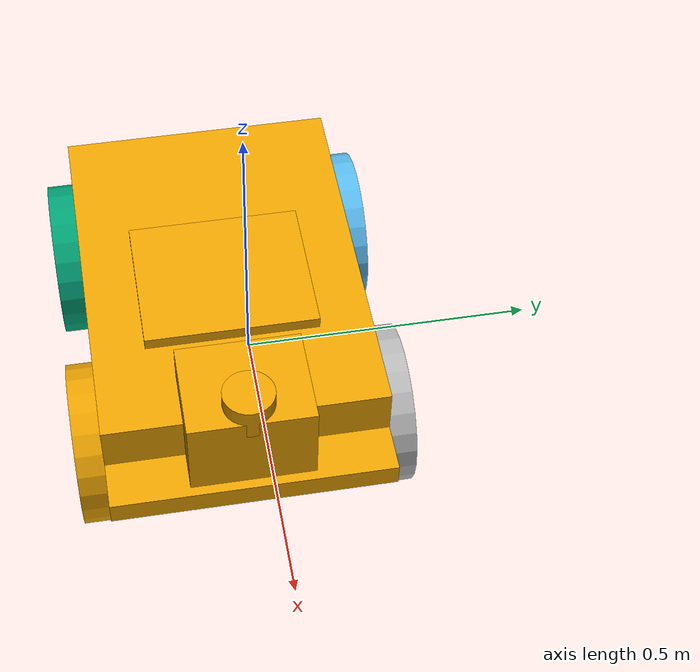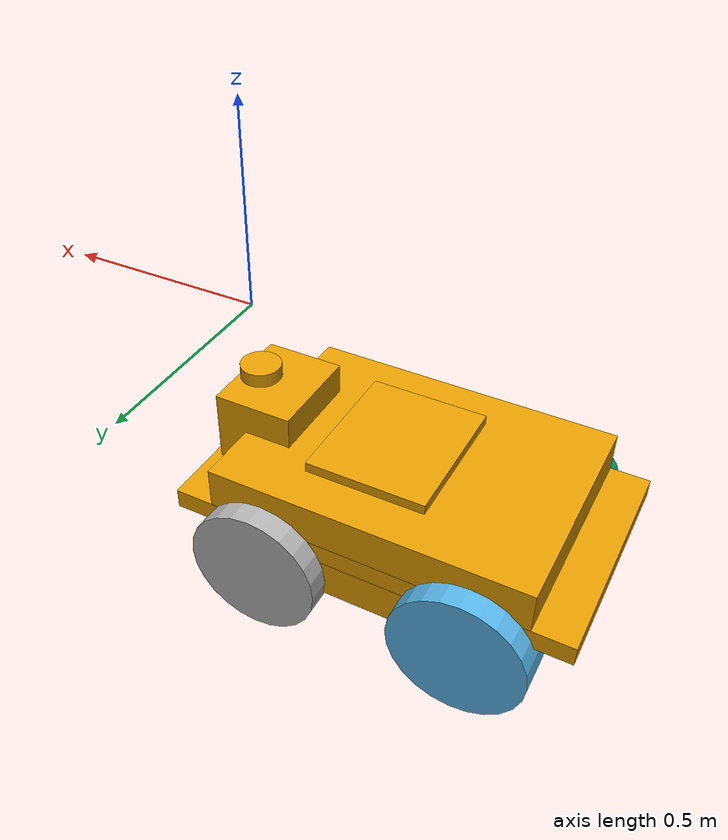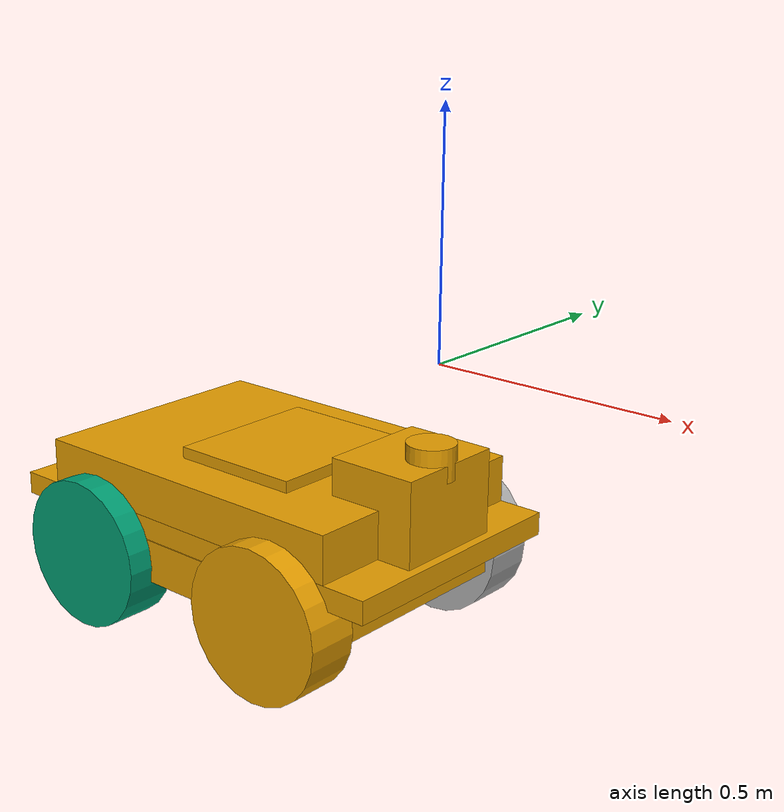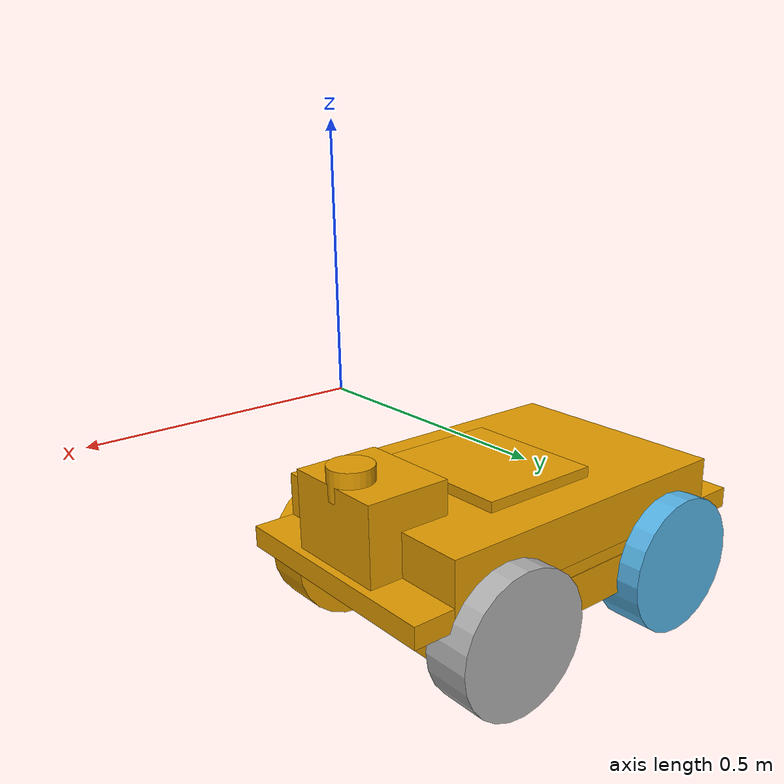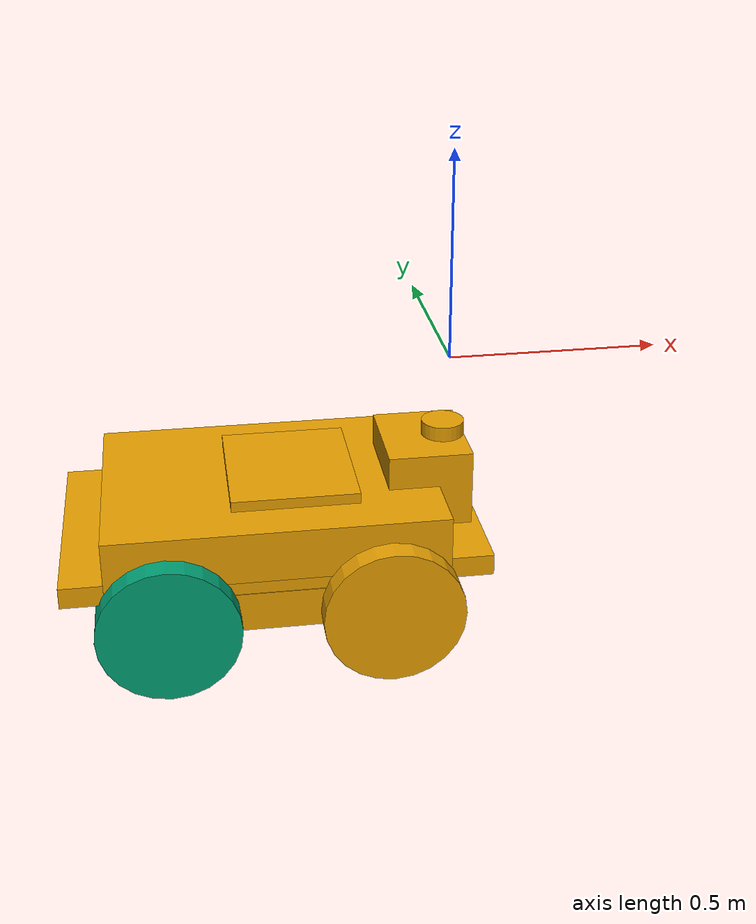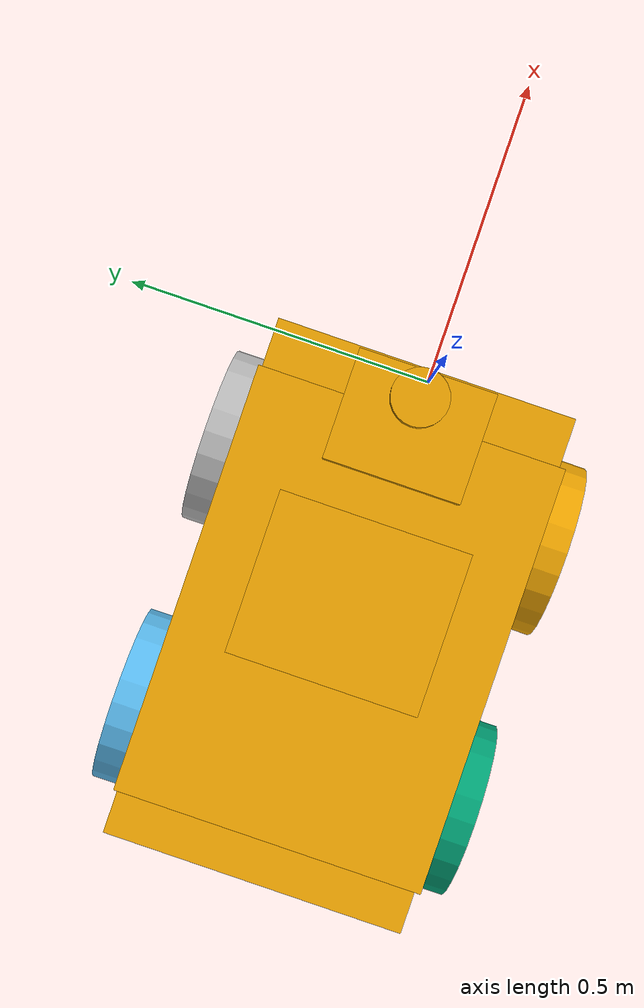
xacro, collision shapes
<?xml version="1.0"?>
<robot name="H03" xmlns:xacro="http://ros.org/wiki/xacro">
  <xacro:arg name="name" default="H03"/>
  <xacro:property name="robot_namespace" value="$(arg name)"/>
  <link name='base_link'>
    <collision name='base_link_collision'>
      <origin xyz='0 0 0.12' rpy='0 -0 0'/>
      <geometry>
        <box size='0.9874 0.5709 0.05'/>
      </geometry>
    </collision>
    <collision name='base_link_collision_bottom'>
      <origin xyz='0 0 0.046' rpy='0 -0 0'/>
      <geometry>
        <box size='0.8 0.5709 0.095'/>
      </geometry>
    </collision>
    <collision name='base_link_collision_1'>
      <origin xyz='0 0 0.185625' rpy='0 -0 0'/>
      <geometry>
        <box size='0.78992 0.5709 0.12375'/>
      </geometry>
    </collision>
    <collision name='base_link_fixed_joint_lump__velodyne_base_link_collision_6'>
      <origin xyz='0.424 0 0.327' rpy='0 -0 0'/>
      <geometry>
        <cylinder radius='0.0516' length='0.0717'/>
      </geometry>
    </collision>
    <collision name='base_link_fixed_joint_lump__sensor_tower_8'>
      <origin xyz='0.374 0 0.215' rpy='0 -0 0'/>
      <geometry>
        <box size='0.2 0.25 0.225'/>
      </geometry>
    </collision>
    <collision name='base_link_fixed_joint_lump__computer_block_9'>
      <origin xyz='0.05 0 0.185' rpy='0 -0 0'/>
      <geometry>
        <box size='0.3 0.355 0.175'/>
      </geometry>
    </collision>
    <visual name='base_link_visual'>
      <origin xyz='0 0 0' rpy='0 -0 0'/>
      <geometry>
        <mesh filename='package://marble_common/meshes/base_link.dae' scale='1 1 1'/>
      </geometry>
    </visual>
    <visual name='base_link_fixed_joint_lump__front_bumper_link_visual_3'>
      <origin xyz='0.48 0 0.091' rpy='0 -0 0'/>
      <geometry>
        <mesh filename='package://marble_common/meshes/bumper.dae' scale='1 1 1'/>
      </geometry>
    </visual>
    <visual name='base_link_fixed_joint_lump__rear_bumper_link_visual_4'>
      <origin xyz='-0.48 0 0.091' rpy='0 -0 3.14159'/>
      <geometry>
        <mesh filename='package://marble_common/meshes/bumper.dae' scale='1 1 1'/>
      </geometry>
    </visual>
    <visual name='base_link_fixed_joint_lump__top_chassis_link_visual_5'>
      <origin xyz='0 0 0' rpy='0 -0 0'/>
      <geometry>
        <mesh filename='package://marble_common/meshes/top_chassis.dae' scale='1 1 1'/>
      </geometry>
    </visual>
    <visual name='base_link_fixed_joint_lump__velodyne_base_link_visual_10'>
      <origin xyz='0.424 0 0.327' rpy='0 -0 0'/>
      <geometry>
        <mesh filename='package://marble_common/meshes/VLP16_base_1.dae' scale='1 1 1'/>
      </geometry>
    </visual>
    <visual name='base_link_fixed_joint_lump__velodyne_base_link_visual_11'>
      <origin xyz='0.424 0 0.327' rpy='0 -0 0'/>
      <geometry>
        <mesh filename='package://marble_common/meshes/VLP16_base_2.dae' scale='1 1 1'/>
      </geometry>
    </visual>
    <visual name='base_link_fixed_joint_lump__velodyne_visual_12'>
      <origin xyz='0.424 0 0.327' rpy='0 -0 0'/>
      <geometry>
        <mesh filename='package://marble_common/meshes/VLP16_scan.dae' scale='1 1 1'/>
      </geometry>
    </visual>
    <visual name='base_link_fixed_joint_lump__user_rail_link_visual_13'>
      <origin xyz='0.272 0 0.245' rpy='0 -0 0'/>
      <geometry>
        <mesh filename='package://marble_common/meshes/user_rail.dae' scale='1 1 1'/>
      </geometry>
    </visual>
    <visual name='base_link_fixed_joint_lump__planar_lidar_link_visual_14'>
      <origin xyz='0.474 0 0.127' rpy='0 -0 0'/>
      <geometry>
        <cylinder radius='0.045' length='0.05'/>
      </geometry>
    </visual>
    <visual name='base_link_fixed_joint_lump__sensor_tower_16'>
      <origin xyz='0.374 0 0.215' rpy='0 -0 0'/>
      <geometry>
        <box size='0.2 0.25 0.225'/>
      </geometry>
    </visual>
    <visual name='base_link_fixed_joint_lump__computer_block_17'>
      <origin xyz='0.05 0 0.185' rpy='0 -0 0'/>
      <geometry>
        <box size='0.3 0.355 0.175'/>
      </geometry>
    </visual>
  </link>

  <link name="${robot_namespace}/imu_viz_link"/>
  <joint name="imu-viz-joint" type="fixed">
    <parent link="${robot_namespace}/imu_viz_link"/>
    <child link="${robot_namespace}/imu_link"/>
    <origin xyz="0 0 0" rpy="3.1415926535 0.0 -1.57079632679"/> <!-- precision machined plate, ouster out back, no heat sink -->
  </joint>

  <link name="${robot_namespace}/imu_link"/>
  <joint name="imu-joint" type="fixed">
    <parent link="${robot_namespace}/imu_viz_link"/>
    <child link="base_link"/>
    <origin xyz="-0.4379 0 -.52418" rpy="0.0 0.0 0.0" />
  </joint>

  <link name="${robot_namespace}/planning_link"/>
  <joint name="planning-joint" type="fixed">
    <parent link="base_link"/>
    <child link="${robot_namespace}/planning_link"/>
    <origin xyz="0.0 0.0 0.62" rpy="0.0 0.0 0.0" />
  </joint>

  <link name="${robot_namespace}/horiz_ouster_sensor"/>
  <joint name="horiz-ouster-joint" type="fixed">
    <parent link="${robot_namespace}/imu_viz_link"/>
    <child link="${robot_namespace}/horiz_ouster_sensor"/>
    <origin xyz="-0.07516 -0.0033 0.0315" rpy="0 0 0"/> <!-- precision machined plate, ouster out back, no heat sink --> <!-- z = 0.02268 for old firmware -->
  </joint>

  <link name="${robot_namespace}/vert_ouster_sensor"/>
  <joint name="vert-ouster-joint" type="fixed">
    <parent link="${robot_namespace}/imu_viz_link"/>
    <child link="${robot_namespace}/vert_ouster_sensor"/>
    <origin xyz="-0.192 0.0037 -0.1365" rpy="1.57079632679 0.0 -1.57079632679" />
  </joint>

  <link name="${robot_namespace}/cam_front_link"/>
  <joint name="cam-front-joint" type="fixed">
    <parent link="${robot_namespace}/imu_viz_link"/>
    <child link="${robot_namespace}/cam_front_link"/>
    <origin xyz="0.152758 0.00 0.0324" rpy="0 0 0" />
  </joint>

  <link name="${robot_namespace}/cam_left_link"/>
  <joint name="cam-left-joint" type="fixed">
    <parent link="${robot_namespace}/imu_viz_link"/>
    <child link="${robot_namespace}/cam_left_link"/>
    <origin xyz="0.00 0.158248 0.0324" rpy="0 0 1.5708" />
  </joint>

  <link name="${robot_namespace}/cam_right_link"/>
  <joint name="cam-right-joint" type="fixed">
    <parent link="${robot_namespace}/imu_viz_link"/>
    <child link="${robot_namespace}/cam_right_link"/>
    <origin xyz="0.00 -0.158258 0.0324" rpy="0 0 -1.5708" />
  </joint>

  <link name="${robot_namespace}/cam_back_link"/>
  <joint name="cam-back-joint" type="fixed">
    <parent link="${robot_namespace}/imu_viz_link"/>
    <child link="${robot_namespace}/cam_back_link"/>
    <origin xyz="-0.1294205 0.00 0.0289" rpy="0 0 -3.14159" />
  </joint>

  <link name="${robot_namespace}/picoflexx_mount_link"/>
  <joint name='picoflexx_mount_joint' type='fixed'>
    <origin xyz='0.02 0.0 -0.075' rpy='0 0.5236 0'/>
    <parent link='${robot_namespace}/imu_viz_link'/>
    <child link='${robot_namespace}/picoflexx_mount_link'/>
  </joint>

  <link name="${robot_namespace}/pico_flexx_left_optical_frame"/>
  <joint name='picoflexx_left_joint' type='fixed'>
    <origin xyz='0.0 0.0 0.0' rpy='0.0 1.5707 0.41'/>
    <parent link='${robot_namespace}/picoflexx_mount_link'/>
    <child link='${robot_namespace}/pico_flexx_left_optical_frame'/>
  </joint>

  <link name="${robot_namespace}/pico_flexx_right_optical_frame"/>
  <joint name='picoflexx_right_joint' type='fixed'>
    <origin xyz='0.0 0.0 0.0' rpy='0.0 1.5707 -0.41'/>
    <parent link='${robot_namespace}/picoflexx_mount_link'/>
    <child link='${robot_namespace}/pico_flexx_right_optical_frame'/>
  </joint>

  <link name="laser"/>
  <joint name="rplidar-joint" type="fixed">
    <parent link="base_link"/>
    <child link="laser"/>
    <origin xyz="0.48 0 0.0" rpy="0.0 0.0 3.1415" />
  </joint>

  <link name="${robot_namespace}/rplidar_safety_link"/>
  <joint name="base-link-rplidar-joint" type="fixed">
    <parent link="base_link"/>
    <child link="${robot_namespace}/rplidar_safety_link"/>
    <origin xyz="0.48 0 0.0" rpy="0.0 3.1415 1.5707" />
  </joint>

  <link name='${robot_namespace}/front_left_wheel_link'>
    <inertial>
      <origin xyz='0 0 0' rpy='0 -0 0'/>
      <mass value='2.637'/>
      <inertia ixx='0.02467' ixy='0' ixz='0' iyy='0.04411' iyz='0' izz='0.02467'/>
    </inertial>
    <collision name='front_left_wheel_link_collision'>
      <origin xyz='0 0 0' rpy='1.5708 -0 0'/>
      <geometry>
        <cylinder radius='0.1651' length='0.1143'/>
      </geometry>
    </collision>
    <visual name='front_left_wheel_link_visual'>
      <origin xyz='0 0 0' rpy='0 -0 0'/>
      <geometry>
        <mesh filename='package://marble_common/meshes/wheel.dae' scale='1 1 1'/>
      </geometry>
    </visual>
  </link>
  <link name='${robot_namespace}/front_right_wheel_link'>
    <inertial>
      <origin xyz='0 0 0' rpy='0 -0 0'/>
      <mass value='2.637'/>
      <inertia ixx='0.02467' ixy='0' ixz='0' iyy='0.04411' iyz='0' izz='0.02467'/>
    </inertial>
    <collision name='front_right_wheel_link_collision'>
      <origin xyz='0 0 0' rpy='1.5708 -0 0'/>
      <geometry>
        <cylinder radius='0.1651' length='0.1143'/>
      </geometry>
    </collision>
    <visual name='front_right_wheel_link_visual'>
      <origin xyz='0 0 0' rpy='0 -0 0'/>
      <geometry>
        <mesh filename='package://marble_common/meshes/wheel.dae' scale='1 1 1'/>
      </geometry>
    </visual>
  </link>
  <link name='${robot_namespace}/rear_left_wheel_link'>
    <inertial>
      <origin xyz='0 0 0' rpy='0 -0 0'/>
      <mass value='2.637'/>
      <inertia ixx='0.02467' ixy='0' ixz='0' iyy='0.04411' iyz='0' izz='0.02467'/>
    </inertial>
    <collision name='rear_left_wheel_link_collision'>
      <origin xyz='0 0 0' rpy='1.5708 -0 0'/>
      <geometry>
        <cylinder radius='0.1651' length='0.1143'/>
      </geometry>
    </collision>
    <visual name='rear_left_wheel_link_visual'>
      <origin xyz='0 0 0' rpy='0 -0 0'/>
      <geometry>
        <mesh filename='package://marble_common/meshes/wheel.dae' scale='1 1 1'/>
      </geometry>
    </visual>
  </link>
  <link name='${robot_namespace}/rear_right_wheel_link'>
    <inertial>
      <origin xyz='0 0 0' rpy='0 -0 0'/>
      <mass value='2.637'/>
      <inertia ixx='0.02467' ixy='0' ixz='0' iyy='0.04411' iyz='0' izz='0.02467'/>
    </inertial>
    <collision name='rear_right_wheel_link_collision'>
      <origin xyz='0 0 0' rpy='1.5708 -0 0'/>
      <geometry>
        <cylinder radius='0.1651' length='0.1143'/>
      </geometry>
    </collision>
    <visual name='rear_right_wheel_link_visual'>
      <origin xyz='0 0 0' rpy='0 -0 0'/>
      <geometry>
        <mesh filename='package://marble_common/meshes/wheel.dae' scale='1 1 1'/>
      </geometry>
    </visual>
  </link>

  <joint name="${robot_namespace}/front_left_wheel_joint" type="fixed">
    <parent link="base_link"/>
    <child link="${robot_namespace}/front_left_wheel_link"/>
    <origin xyz='0.256 0.2854 0.03282' rpy='0 -0 0'/>
  </joint>

  <joint name="${robot_namespace}/front_right_wheel_joint" type="fixed">
    <parent link="base_link"/>
    <child link="${robot_namespace}/front_right_wheel_link"/>
    <origin xyz='0.256 -0.2854 0.03282' rpy='0 -0 0'/>
  </joint>

  <joint name="${robot_namespace}/rear_left_wheel_joint" type="fixed">
    <parent link="base_link"/>
    <child link="${robot_namespace}/rear_left_wheel_link"/>
    <origin xyz='-0.256 0.2854 0.03282' rpy='0 -0 0'/>
  </joint>

  <joint name="${robot_namespace}/rear_right_wheel_joint" type="fixed">
    <parent link="base_link"/>
    <child link="${robot_namespace}/rear_right_wheel_link"/>
    <origin xyz='-0.256 -0.2854 0.03282' rpy='0 -0 0'/>
  </joint>

  <link name="navsat_link"/>
  <joint name="navsat-joint" type="fixed">
    <parent link="${robot_namespace}/horiz_ouster_sensor"/>
    <child link="navsat_link"/>
    <origin xyz="-0.663575 0.19167 -0.14155" rpy="0 0 0" />
  </joint>

  <link name="down_camera1_color_optical_frame"/>
  <joint name="down_right_cam-joint" type="fixed">
    <parent link="${robot_namespace}/horiz_ouster_sensor"/>
    <child link="down_camera1_color_optical_frame"/>
    <origin xyz="0.015 -0.077 -0.575" rpy="0 -1.5708 0" />
  </joint>

  <link name="down_camera1_color_bottomRight_frame_corner"/>
  <joint name="rightDownCam_bottomRight_frame-joint" type="fixed">
    <parent link="${robot_namespace}/horiz_ouster_sensor"/>
    <child link="down_camera1_color_bottomRight_frame_corner"/>
    <origin xyz="-0.0285 -0.137 -0.6877" rpy="0 0 0" />
  </joint>

  <link name="down_camera1_color_bottomLeft_frame_corner"/>
  <joint name="rightDownCam_bottomLeft_frame-joint" type="fixed">
    <parent link="${robot_namespace}/horiz_ouster_sensor"/>
    <child link="down_camera1_color_bottomLeft_frame_corner"/>
    <origin xyz="-0.0285 -0.02 -0.6877" rpy="0 0 0" />
  </joint>

  <link name="down_camera1_color_topRight_frame_corner"/>
  <joint name="rightDownCam_topRight_frame-joint" type="fixed">
    <parent link="${robot_namespace}/horiz_ouster_sensor"/>
    <child link="down_camera1_color_topRight_frame_corner"/>
    <origin xyz="0.06 -0.137 -0.6877" rpy="0 0 0" />
  </joint>

  <link name="down_camera1_color_topLeft_frame_corner"/>
  <joint name="rightDownCam_topLeft_frame-joint" type="fixed">
    <parent link="${robot_namespace}/horiz_ouster_sensor"/>
    <child link="down_camera1_color_topLeft_frame_corner"/>
    <origin xyz="0.06 -0.02 -0.6877" rpy="0 0 0" />
  </joint>

  <link name="down_camera0_color_optical_frame"/>
  <joint name="down_left_cam-joint" type="fixed">
    <parent link="${robot_namespace}/horiz_ouster_sensor"/>
    <child link="down_camera0_color_optical_frame"/>
    <origin xyz="0.015 0.06 -0.575" rpy="0 -1.5708 0" />
  </joint>

  <link name="down_camera0_color_bottomRight_frame_corner"/>
  <joint name="leftDownCam_bottomRight_frame-joint" type="fixed">
    <parent link="${robot_namespace}/horiz_ouster_sensor"/>
    <child link="down_camera0_color_bottomRight_frame_corner"/>
    <origin xyz="-0.0285 0.0 -0.6877" rpy="0 0 0" />
  </joint>

  <link name="down_camera0_color_bottomLeft_frame_corner"/>
  <joint name="leftDownCam_bottomLeft_frame-joint" type="fixed">
    <parent link="${robot_namespace}/horiz_ouster_sensor"/>
    <child link="down_camera0_color_bottomLeft_frame_corner"/>
    <origin xyz="-0.0285 0.1175 -0.6877" rpy="0 0 0" />
  </joint>

  <link name="down_camera0_color_topRight_frame_corner"/>
  <joint name="leftDownCam_topRight_frame-joint" type="fixed">
    <parent link="${robot_namespace}/horiz_ouster_sensor"/>
    <child link="down_camera0_color_topRight_frame_corner"/>
    <origin xyz="0.06 0.0 -0.6877" rpy="0 0 0" />
  </joint>

  <link name="down_camera0_color_topLeft_frame_corner"/>
  <joint name="leftDownCam_topLeft_frame-joint" type="fixed">
    <parent link="${robot_namespace}/horiz_ouster_sensor"/>
    <child link="down_camera0_color_topLeft_frame_corner"/>
    <origin xyz="0.06 0.1175 -0.6877" rpy="0 0 0" />
  </joint>
</robot>
